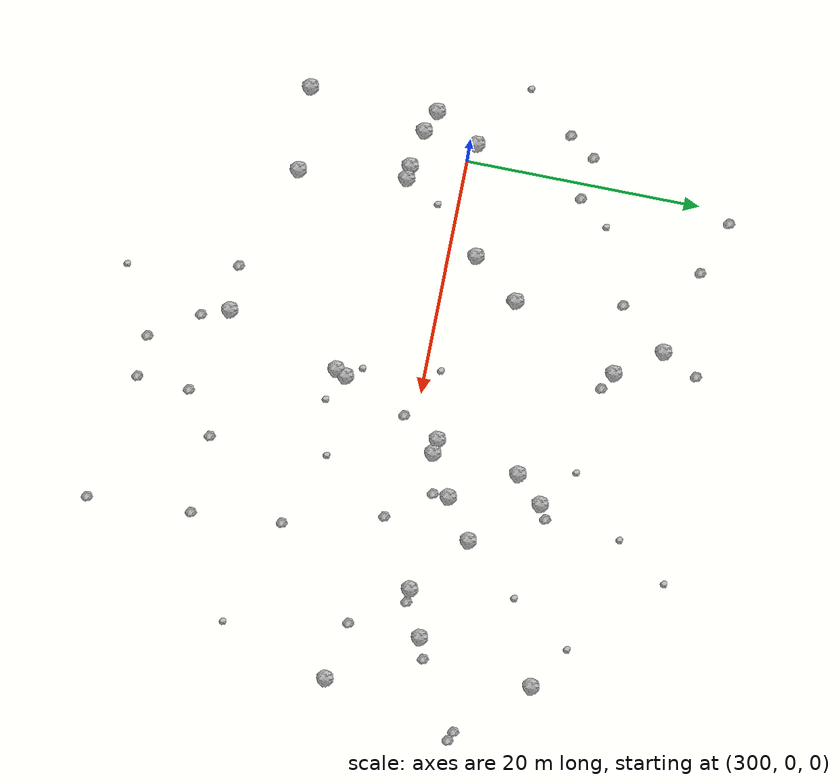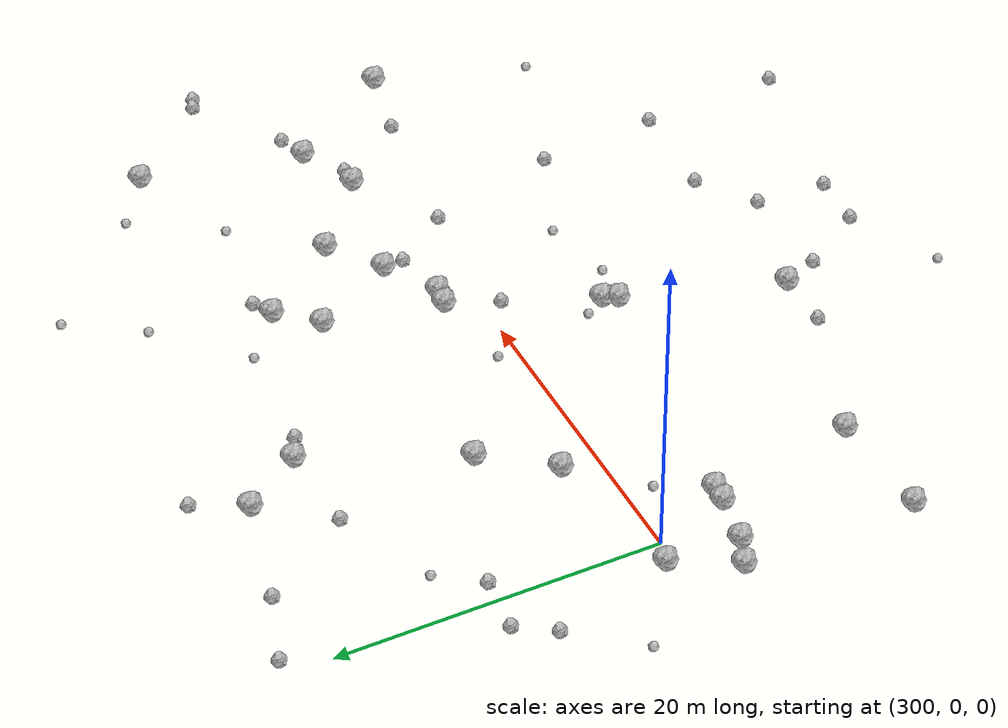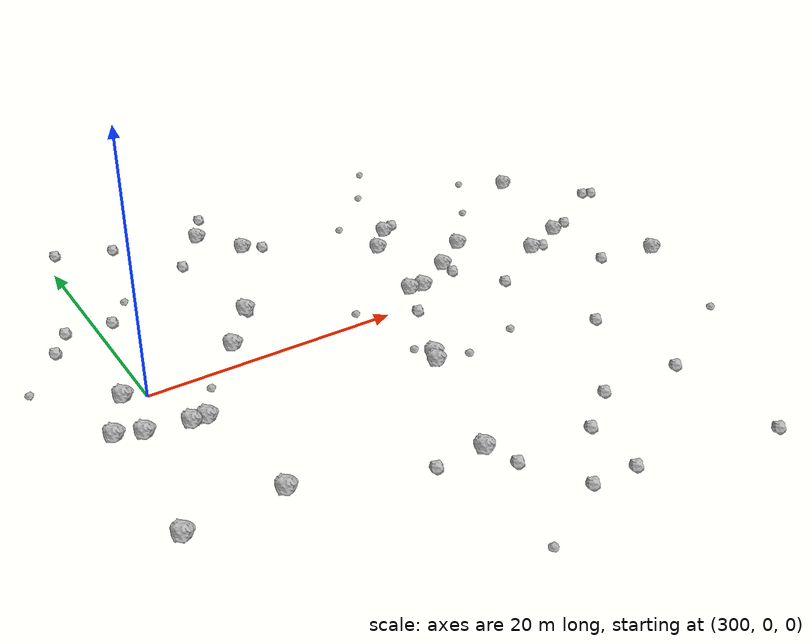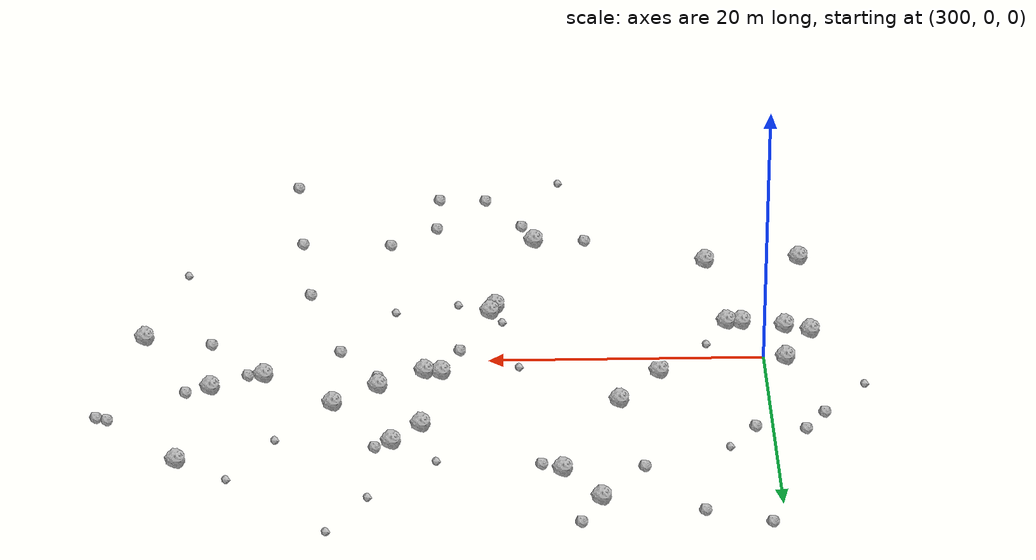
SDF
<sdf version="1.6">
 <world name="default">
  <include><uri>model://sun</uri></include>
  <model name="rock1_8_3">
   <include><uri>model://rock1</uri><pose>342.4478206759711 13.82015723260455 0.5 0 0 0</pose></include>
  </model>
  <model name="rock1_8_4">
   <include><uri>model://rock1</uri><pose>327.2589318023741 11.62538411048022 0.5 0 0 0</pose></include>
  </model>
  <model name="rock1_8_5">
   <include><uri>model://rock1</uri><pose>298.23058452826615 -4.0356606917662035 0.5 0 0 0</pose></include>
  </model>
  <model name="rock1_8_6">
   <include><uri>model://rock1</uri><pose>312.6665843430133 19.369450711095503 0.5 0 0 0</pose></include>
  </model>
  <model name="rock1_8_7">
   <include><uri>model://rock1</uri><pose>307.774518205047 2.2962186705622685 0.5 0 0 0</pose></include>
  </model>
  <model name="rock1_8_8">
   <include><uri>model://rock1</uri><pose>319.3884443480538 -7.437591357086454 0.5 0 0 0</pose></include>
  </model>
  <model name="rock1_8_9">
   <include><uri>model://rock1</uri><pose>325.1274627169262 9.307064567261023 0.5 0 0 0</pose></include>
  </model>
  <model name="rock1_8_10">
   <include><uri>model://rock1</uri><pose>331.41944530818773 6.272521809437606 0.5 0 0 0</pose></include>
  </model>
  <model name="rock1_8_11">
   <include><uri>model://rock1</uri><pose>328.1428563574086 3.9149640631022393 0.5 0 0 0</pose></include>
  </model>
  <model name="rock1_8_12">
   <include><uri>model://rock1</uri><pose>345.1209605328514 -3.3166815365991162 0.5 0 0 0</pose></include>
  </model>
  <model name="rock1_8_13">
   <include><uri>model://rock1</uri><pose>298.4728834205743 0.537584328498383 0.5 0 0 0</pose></include>
  </model>
  <model name="rock1_8_14">
   <include><uri>model://rock1</uri><pose>324.7567526089812 1.9227333632118402 0.5 0 0 0</pose></include>
  </model>
  <model name="rock1_8_15">
   <include><uri>model://rock1</uri><pose>340.20672791131295 3.824008297201374 0.5 0 0 0</pose></include>
  </model>
  <model name="rock1_8_16">
   <include><uri>model://rock1</uri><pose>336.3767700928996 2.2165936012081104 0.5 0 0 0</pose></include>
  </model>
  <model name="rock1_8_17">
   <include><uri>model://rock1</uri><pose>316.2262380855806 -17.203820501764827 0.5 0 0 0</pose></include>
  </model>
  <model name="rock1_8_18">
   <include><uri>model://rock1</uri><pose>303.49077407796415 -13.822563627488769 0.5 0 0 0</pose></include>
  </model>
  <model name="rock1_8_19">
   <include><uri>model://rock1</uri><pose>323.55737663003407 2.078674928447313 0.5 0 0 0</pose></include>
  </model>
  <model name="rock1_8_20">
   <include><uri>model://rock1</uri><pose>315.23387109983065 15.589088877223858 0.5 0 0 0</pose></include>
  </model>
  <model name="rock1_8_21">
   <include><uri>model://rock1</uri><pose>296.3938889748369 -3.263959569071883 0.5 0 0 0</pose></include>
  </model>
  <model name="rock1_8_22">
   <include><uri>model://rock1</uri><pose>296.4389126925012 -14.163040902785443 0.5 0 0 0</pose></include>
  </model>
  <model name="rock1_8_23">
   <include><uri>model://rock1</uri><pose>319.80481031307136 -6.556964557657089 0.5 0 0 0</pose></include>
  </model>
  <model name="rock1_8_24">
   <include><uri>model://rock1</uri><pose>302.4514386137347 -4.706488421628304 0.5 0 0 0</pose></include>
  </model>
  <model name="rock1_8_25">
   <include><uri>model://rock1</uri><pose>301.3638368538519 -4.627613912252656 0.5 0 0 0</pose></include>
  </model>
  <model name="rock1_8_26">
   <include><uri>model://rock1</uri><pose>310.83610896750815 6.31065140076695 0.5 0 0 0</pose></include>
  </model>
  <model name="rock2_8_0">
   <include><uri>model://rock2</uri><pose>337.47335479713576 2.185670200312387 0.3 0 0 0</pose></include>
  </model>
  <model name="rock2_8_1">
   <include><uri>model://rock2</uri><pose>340.1768220027098 -2.2841231201196557 0.3 0 0 0</pose></include>
  </model>
  <model name="rock2_8_2">
   <include><uri>model://rock2</uri><pose>312.385293104113 -17.157760113146097 0.3 0 0 0</pose></include>
  </model>
  <model name="rock2_8_3">
   <include><uri>model://rock2</uri><pose>300.95060766277317 22.746329660019313 0.3 0 0 0</pose></include>
  </model>
  <model name="rock2_8_4">
   <include><uri>model://rock2</uri><pose>322.0982161804333 -1.0379125938918747 0.3 0 0 0</pose></include>
  </model>
  <model name="rock2_8_5">
   <include><uri>model://rock2</uri><pose>297.7031160155045 10.45163878934887 0.3 0 0 0</pose></include>
  </model>
  <model name="rock2_8_6">
   <include><uri>model://rock2</uri><pose>333.9475015573924 -25.962919734302524 0.3 0 0 0</pose></include>
  </model>
  <model name="rock2_8_7">
   <include><uri>model://rock2</uri><pose>319.668055164447 -23.590118023636123 0.3 0 0 0</pose></include>
  </model>
  <model name="rock2_8_8">
   <include><uri>model://rock2</uri><pose>326.96546005136395 -16.792444914812787 0.3 0 0 0</pose></include>
  </model>
  <model name="rock2_8_9">
   <include><uri>model://rock2</uri><pose>332.9769611954923 -9.415271158447037 0.3 0 0 0</pose></include>
  </model>
  <model name="rock2_8_10">
   <include><uri>model://rock2</uri><pose>316.6656238465322 14.828477126517434 0.3 0 0 0</pose></include>
  </model>
  <model name="rock2_8_11">
   <include><uri>model://rock2</uri><pose>309.4275661869114 15.291520458320342 0.3 0 0 0</pose></include>
  </model>
  <model name="rock2_8_12">
   <include><uri>model://rock2</uri><pose>310.78705313052825 6.003795525303488 0.3 0 0 0</pose></include>
  </model>
  <model name="rock2_8_13">
   <include><uri>model://rock2</uri><pose>305.51292522453014 21.156353752854123 0.3 0 0 0</pose></include>
  </model>
  <model name="rock2_8_14">
   <include><uri>model://rock2</uri><pose>347.45022803931494 8.168034435486632 0.3 0 0 0</pose></include>
  </model>
  <model name="rock2_8_15">
   <include><uri>model://rock2</uri><pose>330.7810112420703 -1.04103184297389 0.3 0 0 0</pose></include>
  </model>
  <model name="rock2_8_16">
   <include><uri>model://rock2</uri><pose>296.20287599816834 8.223111613688346 0.3 0 0 0</pose></include>
  </model>
  <model name="rock2_8_17">
   <include><uri>model://rock2</uri><pose>323.45646091066067 -19.27384429794743 0.3 0 0 0</pose></include>
  </model>
  <model name="rock2_8_18">
   <include><uri>model://rock2</uri><pose>301.2750233322746 10.066397667280938 0.3 0 0 0</pose></include>
  </model>
  <model name="rock2_8_19">
   <include><uri>model://rock2</uri><pose>323.16801683065705 -23.77142467426448 0.3 0 0 0</pose></include>
  </model>
  <model name="rock2_8_20">
   <include><uri>model://rock2</uri><pose>314.1705877264692 22.479917624246056 0.3 0 0 0</pose></include>
  </model>
  <model name="rock2_8_21">
   <include><uri>model://rock2</uri><pose>348.2420906299285 7.840900137898075 0.3 0 0 0</pose></include>
  </model>
  <model name="rock2_8_22">
   <include><uri>model://rock2</uri><pose>328.4073083319103 12.312117719426958 0.3 0 0 0</pose></include>
  </model>
  <model name="rock2_8_23">
   <include><uri>model://rock2</uri><pose>333.5733844049276 -17.108579757922964 0.3 0 0 0</pose></include>
  </model>
  <model name="rock2_8_24">
   <include><uri>model://rock2</uri><pose>328.11098177948924 2.6075408275836978 0.3 0 0 0</pose></include>
  </model>
  <model name="rock2_8_25">
   <include><uri>model://rock2</uri><pose>317.0392154743191 -19.499913491665836 0.3 0 0 0</pose></include>
  </model>
  <model name="rock2_8_26">
   <include><uri>model://rock2</uri><pose>341.93657836908494 4.474229669133557 0.3 0 0 0</pose></include>
  </model>
  <model name="rock3_8_0">
   <include><uri>model://rock3</uri><pose>314.0166051521034 -26.47393472646747 0.2 0 0 0</pose></include>
  </model>
  <model name="rock3_8_1">
   <include><uri>model://rock3</uri><pose>328.91383043959036 18.76321501080008 0.2 0 0 0</pose></include>
  </model>
  <model name="rock3_8_2">
   <include><uri>model://rock3</uri><pose>304.05677323777616 -1.7321706810316186 0.2 0 0 0</pose></include>
  </model>
  <model name="rock3_8_3">
   <include><uri>model://rock3</uri><pose>317.8166756431967 1.237432973095359 0.2 0 0 0</pose></include>
  </model>
  <model name="rock3_8_4">
   <include><uri>model://rock3</uri><pose>338.81378317085256 16.180570375476748 0.2 0 0 0</pose></include>
  </model>
  <model name="rock3_8_5">
   <include><uri>model://rock3</uri><pose>322.02997001618917 -7.838845369461801 0.2 0 0 0</pose></include>
  </model>
  <model name="rock3_8_6">
   <include><uri>model://rock3</uri><pose>326.6545217176938 -6.841543518241981 0.2 0 0 0</pose></include>
  </model>
  <model name="rock3_8_7">
   <include><uri>model://rock3</uri><pose>324.041892453572 14.107278956249338 0.2 0 0 0</pose></include>
  </model>
  <model name="rock3_8_8">
   <include><uri>model://rock3</uri><pose>292.98527809022875 4.147321484317523 0.2 0 0 0</pose></include>
  </model>
  <model name="rock3_8_9">
   <include><uri>model://rock3</uri><pose>303.21280532725405 12.599277734440534 0.2 0 0 0</pose></include>
  </model>
  <model name="rock3_8_10">
   <include><uri>model://rock3</uri><pose>342.0569480211132 -12.71914634473871 0.2 0 0 0</pose></include>
  </model>
  <model name="rock3_8_11">
   <include><uri>model://rock3</uri><pose>331.8229566109481 23.154549288268655 0.2 0 0 0</pose></include>
  </model>
  <model name="rock3_8_12">
   <include><uri>model://rock3</uri><pose>335.4348549135855 11.002693805339995 0.2 0 0 0</pose></include>
  </model>
  <model name="rock3_8_13">
   <include><uri>model://rock3</uri><pose>318.8616594551367 -5.264406256317439 0.2 0 0 0</pose></include>
  </model>
 </world>
</sdf>
